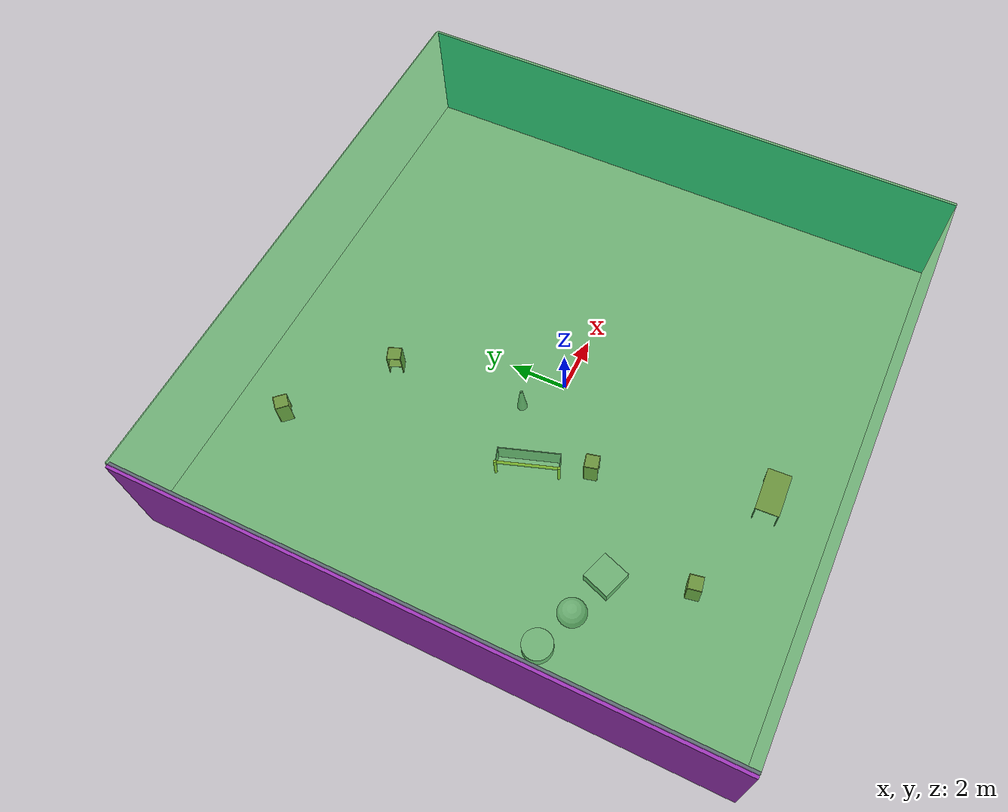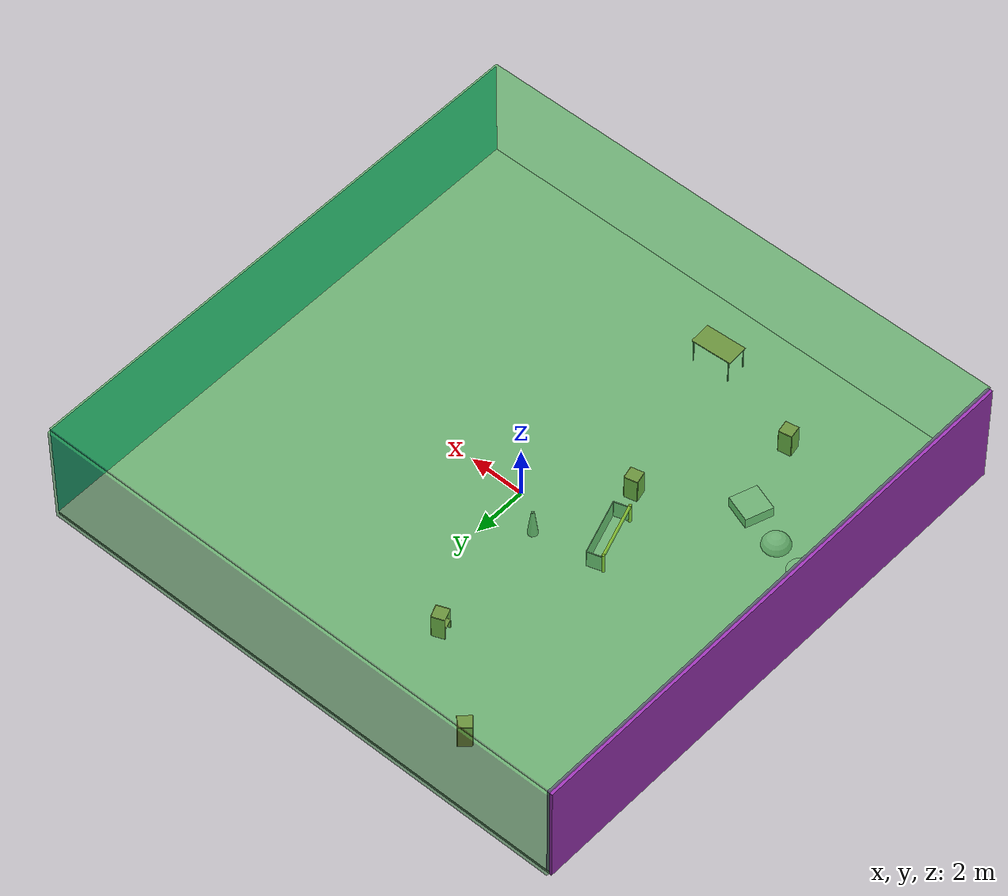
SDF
<sdf version="1.4">
 <world name="default">
  <physics type="ode">
   <max_step_size>0.001</max_step_size>
   <real_time_factor>1</real_time_factor>
   <real_time_update_rate>1000</real_time_update_rate>
   <gravity>0 0 -9.8</gravity>
  </physics>
  <scene><ambient>0.4 0.4 0.4 1</ambient><background>0.7 0.7 0.7 1</background><shadows>1</shadows></scene>
  <model name="Surrounding">
   <static>1</static>
   <link name="Ceiling">
    <collision name="Ceiling_Collision"><geometry><box><size>20 20 0.1</size></box></geometry></collision>
    <visual name="Ceiling_Visual">
     <geometry><box><size>20 20 0.1</size></box></geometry>
     <material>
      <script><uri>file://media/materials/scripts/gazebo.material</uri><name>Gazebo/GreenTransparent</name></script>
     </material>
    </visual>
    <pose>0 0 4.05 0 0 0</pose>
   </link>
   <link name="Wall_South">
    <collision name="Wall_South_Collision">
     <geometry><box><size>20 0 4</size></box></geometry>
     <pose>0 0 2 0 -0 0</pose>
    </collision>
    <visual name="Wall_South_Visual">
     <pose>0 0 2 0 -0 0</pose>
     <geometry><box><size>20 0 4</size></box></geometry>
     <material>
      <script><uri>file://media/materials/scripts/gazebo.material</uri><name>Gazebo/GreyTransparent</name></script>
     </material>
    </visual>
    <velocity_decay><linear>0</linear><angular>0</angular></velocity_decay>
    <pose>0 -10 0 0 -0 0</pose>
   </link>
   <link name="Wall_East">
    <collision name="Wall_21_Collision">
     <geometry><box><size>20 0 4</size></box></geometry>
     <pose>0 0 2 0 -0 0</pose>
    </collision>
    <visual name="Wall_21_Visual">
     <pose>0 0 2 0 -0 0</pose>
     <geometry><box><size>20 0 4</size></box></geometry>
     <material>
      <script>
       <uri>file://media/materials/scripts/gazebo.material</uri>
       <name>Gazebo/TurquoiseGlowOutline</name>
      </script>
     </material>
    </visual>
    <velocity_decay><linear>0</linear><angular>0</angular></velocity_decay>
    <pose>10 0 0 0 -0 1.5708</pose>
   </link>
   <link name="Wall_North">
    <collision name="Wall_22_Collision">
     <geometry><box><size>20 0.2 4</size></box></geometry>
     <pose>0 0 2 0 -0 0</pose>
    </collision>
    <visual name="Wall_22_Visual">
     <pose>0 0 2 0 -0 0</pose>
     <geometry><box><size>20 0.2 4</size></box></geometry>
     <material>
      <script><uri>file://media/materials/scripts/gazebo.material</uri><name>Gazebo/GreenTransparent</name></script>
     </material>
    </visual>
    <velocity_decay><linear>0</linear><angular>0</angular></velocity_decay>
    <pose>0 10 0 0 -0 0</pose>
   </link>
   <link name="Wall_West">
    <collision name="Wall_23_Collision">
     <geometry><box><size>20 0.2 4</size></box></geometry>
     <pose>0 0 2 0 -0 0</pose>
    </collision>
    <visual name="Wall_23_Visual">
     <pose>0 0 2 0 -0 0</pose>
     <geometry><box><size>20 0.2 4</size></box></geometry>
     <material>
      <script><uri>file://media/materials/scripts/gazebo.material</uri><name>Gazebo/PurpleGlow</name></script>
     </material>
    </visual>
    <velocity_decay><linear>0</linear><angular>0</angular></velocity_decay>
    <pose>-10 0 0 0 0 -1.5708</pose>
   </link>
   <link name="Ground_link">
    <collision name="collision">
     <pose>0 0 .05 0 -0 0</pose>
     <geometry><box><size>20 20 0.1</size></box></geometry>
    </collision>
    <visual name="visual">
     <pose>0 0 .05 0 -0 0</pose>
     <geometry><box><size>20 20 0.1</size></box></geometry>
     <material>
      <script><uri>file://media/materials/scripts/gazebo.material</uri><name>Gazebo/JointAnchor</name></script>
     </material>
    </visual>
   </link>
   <static>1</static>
  </model>
  <spherical_coordinates>
   <surface_model>EARTH_WGS84</surface_model>
   <latitude_deg>0</latitude_deg>
   <longitude_deg>0</longitude_deg>
   <elevation>0</elevation>
   <heading_deg>0</heading_deg>
  </spherical_coordinates>
  <light name="lightball_0" type="diffuse">
   <diffuse>0.8 0.8 0.8 1</diffuse>
   <specular>0.2 0.2 0.2 1</specular>
   <attenuation>
    <range>100</range>
    <constant>0.7</constant>
    <linear>0.01</linear>
    <quadratic>0.001</quadratic>
   </attenuation>
   <direction>-0.5 0.1 -0.9</direction>
   <pose>8.79914945482 -7.67565546368 2.50093217601 0 0 0</pose>
  </light>
  <light name="lightball_1" type="diffuse">
   <diffuse>0.8 0.8 0.8 1</diffuse>
   <specular>0.2 0.2 0.2 1</specular>
   <attenuation>
    <range>100</range>
    <constant>0.7</constant>
    <linear>0.01</linear>
    <quadratic>0.001</quadratic>
   </attenuation>
   <direction>-0.5 0.1 -0.9</direction>
   <pose>-7.39326178614 -4.67627227361 0.584132606721 0 0 0</pose>
  </light>
  <light name="lightball_2" type="diffuse">
   <diffuse>0.8 0.8 0.8 1</diffuse>
   <specular>0.2 0.2 0.2 1</specular>
   <attenuation>
    <range>100</range>
    <constant>0.7</constant>
    <linear>0.01</linear>
    <quadratic>0.001</quadratic>
   </attenuation>
   <direction>-0.5 0.1 -0.9</direction>
   <pose>9.46896873809 3.05173779537 2.83737077806 0 0 0</pose>
  </light>
  <light name="lightball_3" type="diffuse">
   <diffuse>0.8 0.8 0.8 1</diffuse>
   <specular>0.2 0.2 0.2 1</specular>
   <attenuation>
    <range>100</range>
    <constant>0.7</constant>
    <linear>0.01</linear>
    <quadratic>0.001</quadratic>
   </attenuation>
   <direction>-0.5 0.1 -0.9</direction>
   <pose>-5.4772504658 -5.71434132619 2.65972587997 0 0 0</pose>
  </light>
  <light name="lightball_4" type="diffuse">
   <diffuse>0.8 0.8 0.8 1</diffuse>
   <specular>0.2 0.2 0.2 1</specular>
   <attenuation>
    <range>100</range>
    <constant>0.7</constant>
    <linear>0.01</linear>
    <quadratic>0.001</quadratic>
   </attenuation>
   <direction>-0.5 0.1 -0.9</direction>
   <pose>-5.66669742626 -3.11590250258 3.75171025832 0 0 0</pose>
  </light>
  <light name="lightball_5" type="diffuse">
   <diffuse>0.8 0.8 0.8 1</diffuse>
   <specular>0.2 0.2 0.2 1</specular>
   <attenuation>
    <range>100</range>
    <constant>0.7</constant>
    <linear>0.01</linear>
    <quadratic>0.001</quadratic>
   </attenuation>
   <direction>-0.5 0.1 -0.9</direction>
   <pose>0.0419030068231 -1.06769390658 3.59828311904 0 0 0</pose>
  </light>
  <light name="lightball_6" type="diffuse">
   <diffuse>0.8 0.8 0.8 1</diffuse>
   <specular>0.2 0.2 0.2 1</specular>
   <attenuation>
    <range>100</range>
    <constant>0.7</constant>
    <linear>0.01</linear>
    <quadratic>0.001</quadratic>
   </attenuation>
   <direction>-0.5 0.1 -0.9</direction>
   <pose>-2.36769559272 5.09131203187 1.98822819512 0 0 0</pose>
  </light>
  <light name="lightball_7" type="diffuse">
   <diffuse>0.8 0.8 0.8 1</diffuse>
   <specular>0.2 0.2 0.2 1</specular>
   <attenuation>
    <range>100</range>
    <constant>0.7</constant>
    <linear>0.01</linear>
    <quadratic>0.001</quadratic>
   </attenuation>
   <direction>-0.5 0.1 -0.9</direction>
   <pose>9.98281331864 3.41240981 3.64990336904 0 0 0</pose>
  </light>
  <light name="lightball_8" type="diffuse">
   <diffuse>0.8 0.8 0.8 1</diffuse>
   <specular>0.2 0.2 0.2 1</specular>
   <attenuation>
    <range>100</range>
    <constant>0.7</constant>
    <linear>0.01</linear>
    <quadratic>0.001</quadratic>
   </attenuation>
   <direction>-0.5 0.1 -0.9</direction>
   <pose>2.0230870473 9.37006693021 0.60314225262 0 0 0</pose>
  </light>
  <light name="lightball_9" type="diffuse">
   <diffuse>0.8 0.8 0.8 1</diffuse>
   <specular>0.2 0.2 0.2 1</specular>
   <attenuation>
    <range>100</range>
    <constant>0.7</constant>
    <linear>0.01</linear>
    <quadratic>0.001</quadratic>
   </attenuation>
   <direction>-0.5 0.1 -0.9</direction>
   <pose>-1.8834991283 -7.72532289932 1.49648171514 0 0 0</pose>
  </light>
  <light name="lightball_10" type="diffuse">
   <diffuse>0.8 0.8 0.8 1</diffuse>
   <specular>0.2 0.2 0.2 1</specular>
   <attenuation>
    <range>100</range>
    <constant>0.7</constant>
    <linear>0.01</linear>
    <quadratic>0.001</quadratic>
   </attenuation>
   <direction>-0.5 0.1 -0.9</direction>
   <pose>-4.52360206481 6.38518677889 1.2553359709 0 0 0</pose>
  </light>
  <include>
   <uri>model://textured_shapes</uri>
   <pose>-7.14901885221 -3.59141199269 0 0 0 1.23573922169</pose>
  </include>
  <include><uri>model://cabinet</uri><pose>-4.98365870692 -6.72113125071 0 0 0 1.75198259589</pose></include>
  <include>
   <uri>model://robocup_3Dsim_goal</uri>
   <pose>-3.57779056269 -0.315949843291 0 0 0 0.319583543463</pose>
  </include>
  <include><uri>model://cabinet</uri><pose>-5.02360997114 8.12813865278 0 0 0 2.33404379456</pose></include>
  <include><uri>model://table</uri><pose>-1.16666403319 -7.88084749163 0 0 0 0.0485070447823</pose></include>
  <include><uri>model://cabinet</uri><pose>-2.6266295912 -2.21052586677 0 0 0 1.8055193605</pose></include>
  <include>
   <uri>model://construction_cone</uri>
   <pose>-1.32949738633 0.98161110653 0 0 0 1.00925757111</pose>
  </include>
  <include><uri>model://cabinet</uri><pose>-1.79034979335 5.63018443111 0 0 0 0.383793904046</pose></include>
 </world>
</sdf>

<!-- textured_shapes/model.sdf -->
<sdf version="1.6">
  <model name="textured_shapes">
    <pose>0 0 0.5 0 0 0</pose>
    <link name="box">
      <pose>0 -1.5 0 0 0 0</pose>
      <collision name="collision">
        <geometry>
          <box>
            <size>1 1 1</size>
          </box>
        </geometry>
      </collision>
      <visual name="visual">
        <geometry>
          <box>
            <size>1 1 1</size>
          </box>
        </geometry>
        <material>
          <script>
            <uri>model://../model_source/models/textured_shapes/materials/scripts</uri>
            <uri>model://../model_source/models/textured_shapes/materials/textures</uri>
            <name>TexturedShape/Squares</name>
          </script>
        </material>
      </visual>
    </link>
    <link name="sphere">
      <collision name="collision">
        <geometry>
          <sphere>
            <radius>0.5</radius>
          </sphere>
        </geometry>
      </collision>
      <visual name="visual">
        <geometry>
          <sphere>
            <radius>0.5</radius>
          </sphere>
        </geometry>
        <material>
          <script>
            <uri>model://../model_source/models/textured_shapes/materials/scripts</uri>
            <uri>model://../model_source/models/textured_shapes/materials/textures</uri>
            <name>TexturedShape/Squares</name>
          </script>
        </material>
      </visual>
    </link>
    <link name="cylinder">
      <pose>0 1.5 0 0 0 0</pose>
      <collision name="collision">
        <geometry>
          <cylinder>
            <radius>0.5</radius>
            <length>1</length>
          </cylinder>
        </geometry>
      </collision>
      <visual name="visual">
        <geometry>
          <cylinder>
            <radius>0.5</radius>
            <length>1</length>
          </cylinder>
        </geometry>
        <material>
          <script>
            <uri>model://../model_source/models/textured_shapes/materials/scripts</uri>
            <uri>model://../model_source/models/textured_shapes/materials/textures</uri>
            <name>TexturedShape/Squares</name>
          </script>
        </material>
      </visual>
    </link>
  </model>
</sdf>

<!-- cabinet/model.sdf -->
<sdf version="1.5">
  <model name="cabinet">
    <static>true</static>
    <link name="cabinet_bottom_plate">
      <inertial>
        <pose>0 0 -1 0 0 0</pose>
        <inertia>
          <ixx>2.050000</ixx>
          <ixy>0</ixy>
          <ixz>0</ixz>
          <iyy>2.050000</iyy>
          <iyz>0</iyz>
          <izz>2.050000</izz>
        </inertia>
        <mass>25.000000</mass>
      </inertial>
      <collision name="cabinet_bottom_plate_geom">
        <pose>0 0 0.010000 0 0 0</pose>
        <geometry>
          <box>
            <size>0.450000 0.450000 0.020000</size>
          </box>
        </geometry>
      </collision>
      <visual name="cabinet_bottom_plate_geom_visual">
        <pose>0 0 0.010000 0 0 0</pose>
        <geometry>
          <box>
            <size>0.450000 0.450000 0.020000</size>
          </box>
        </geometry>
        <material>
          <script>
            <uri>model://media/materials/scripts/gazebo.material</uri>
            <name>Gazebo/Wood</name>
          </script>
        </material>
      </visual>
      <collision name="cabinet_bottom_plate_geom_cabinet_back_plate">
        <pose>0.235000 0 0.510000 0 0 0</pose>
        <geometry>
          <box>
            <size>0.020000 0.450000 1.020000</size>
          </box>
        </geometry>
      </collision>
      <visual name="cabinet_bottom_plate_geom_cabinet_back_plate_visual">
        <pose>0.235000 0 0.510000 0 0 0</pose>
        <geometry>
          <box>
            <size>0.020000 0.450000 1.020000</size>
          </box>
        </geometry>
        <material>
          <script>
            <uri>model://media/materials/scripts/gazebo.material</uri>
            <name>Gazebo/Wood</name>
          </script>
        </material>
      </visual>
      <collision name="cabinet_bottom_plate_geom_cabinet_left_plate">
        <pose>0 0.235000 0.510000 0 0 0</pose>
        <geometry>
          <box>
            <size>0.450000 0.020000 1.020000</size>
          </box>
        </geometry>
      </collision>
      <visual name="cabinet_bottom_plate_geom_cabinet_left_plate_visual">
        <pose>0 0.235000 0.510000 0 0 0</pose>
        <geometry>
          <box>
            <size>0.450000 0.020000 1.020000</size>
          </box>
        </geometry>
        <material>
          <script>
            <uri>model://media/materials/scripts/gazebo.material</uri>
            <name>Gazebo/Wood</name>
          </script>
        </material>
      </visual>
      <collision name="cabinet_bottom_plate_geom_cabinet_middle_plate">
        <pose>0 0 0.510000 0 0 0</pose>
        <geometry>
          <box>
            <size>0.450000 0.450000 0.020000</size>
          </box>
        </geometry>
      </collision>
      <visual name="cabinet_bottom_plate_geom_cabinet_middle_plate_visual">
        <pose>0 0 0.510000 0 0 0</pose>
        <geometry>
          <box>
            <size>0.450000 0.450000 0.020000</size>
          </box>
        </geometry>
        <material>
          <script>
            <uri>model://media/materials/scripts/gazebo.material</uri>
            <name>Gazebo/Wood</name>
          </script>
        </material>
      </visual>
      <collision name="cabinet_bottom_plate_geom_cabinet_right_plate">
        <pose>0 -0.235000 0.510000 0 0 0</pose>
        <geometry>
          <box>
            <size>0.450000 0.020000 1.020000</size>
          </box>
        </geometry>
      </collision>
      <visual name="cabinet_bottom_plate_geom_cabinet_right_plate_visual">
        <pose>0 -0.235000 0.510000 0 0 0</pose>
        <geometry>
          <box>
            <size>0.450000 0.020000 1.020000</size>
          </box>
        </geometry>
        <material>
          <script>
            <uri>model://media/materials/scripts/gazebo.material</uri>
            <name>Gazebo/Wood</name>
          </script>
        </material>
      </visual>
      <collision name="cabinet_bottom_plate_geom_cabinet_top_plate">
        <pose>0 0 1.010000 0 0 0</pose>
        <geometry>
          <box>
            <size>0.450000 0.450000 0.020000</size>
          </box>
        </geometry>
      </collision>
      <visual name="cabinet_bottom_plate_geom_cabinet_top_plate_visual">
        <pose>0 0 1.010000 0 0 0</pose>
        <geometry>
          <box>
            <size>0.450000 0.450000 0.020000</size>
          </box>
        </geometry>
        <material>
          <script>
            <uri>model://media/materials/scripts/gazebo.material</uri>
            <name>Gazebo/Wood</name>
          </script>
        </material>
      </visual>
    </link>
  </model>
</sdf>

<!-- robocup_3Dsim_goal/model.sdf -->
<sdf version="1.5">
  <model name="robocup_3d_goal">
    <static>true</static>
    <link name="left_post">
      <pose>0 1.05 0.45 0 0 0</pose>
      <collision name="collision">
        <geometry>
          <cylinder>
            <radius>0.05</radius>
            <length>0.9</length>
          </cylinder>
        </geometry>
      </collision>
      <visual name="visual">
        <geometry>
          <cylinder>
            <radius>0.05</radius>
            <length>0.9</length>
          </cylinder>
        </geometry>
        <material>
          <script>
            <uri>file://media/materials/scripts/gazebo.material</uri>
            <name>Gazebo/ZincYellow</name>
          </script>
        </material>
      </visual>
    </link>
    <link name="left_support_horiz_lower">
      <pose>0.30 1.05 0.01 0 0 0</pose>
      <collision name="collision">
        <geometry>
          <box>
            <size>0.50 0.02 0.02</size>
          </box>
        </geometry>
      </collision>
      <visual name="visual">
        <geometry>
          <box>
            <size>0.50 0.02 0.02</size>
          </box>
        </geometry>
        <material>
          <script>
            <uri>file://media/materials/scripts/gazebo.material</uri>
            <name>Gazebo/White</name>
          </script>
        </material>
      </visual>
    </link>
    <link name="left_support_horiz_upper">
      <pose>0.30 1.05 0.79 0 0 0</pose>
      <collision name="collision">
        <geometry>
          <box>
            <size>0.50 0.02 0.02</size>
          </box>
        </geometry>
      </collision>
      <visual name="visual">
        <geometry>
          <box>
            <size>0.50 0.02 0.02</size>
          </box>
        </geometry>
        <material>
          <script>
            <uri>file://media/materials/scripts/gazebo.material</uri>
            <name>Gazebo/White</name>
          </script>
        </material>
      </visual>
    </link>
    <link name="left_support_vertical">
      <pose>0.56 1.05 0.4 0 1.5708 0</pose>
      <collision name="collision">
        <geometry>
          <box>
            <size>0.80 0.02 0.02</size>
          </box>
        </geometry>
      </collision>
      <visual name="visual">
        <geometry>
          <box>
            <size>0.80 0.02 0.02</size>
          </box>
        </geometry>
        <material>
          <script>
            <uri>file://media/materials/scripts/gazebo.material</uri>
            <name>Gazebo/White</name>
          </script>
        </material>
      </visual>
    </link>
    <link name="right_support_horiz_lower">
      <pose>0.30 -1.05 0.01 0 0 0</pose>
      <collision name="collision">
        <geometry>
          <box>
            <size>0.50 0.02 0.02</size>
          </box>
        </geometry>
      </collision>
      <visual name="visual">
        <geometry>
          <box>
            <size>0.50 0.02 0.02</size>
          </box>
        </geometry>
        <material>
          <script>
            <uri>file://media/materials/scripts/gazebo.material</uri>
            <name>Gazebo/White</name>
          </script>
        </material>
      </visual>
    </link>
    <link name="right_support_horiz_upper">
      <pose>0.30 -1.05 0.79 0 0 0</pose>
      <collision name="collision">
        <geometry>
          <box>
            <size>0.50 0.02 0.02</size>
          </box>
        </geometry>
      </collision>
      <visual name="visual">
        <geometry>
          <box>
            <size>0.50 0.02 0.02</size>
          </box>
        </geometry>
        <material>
          <script>
            <uri>file://media/materials/scripts/gazebo.material</uri>
            <name>Gazebo/White</name>
          </script>
        </material>
      </visual>
    </link>
    <link name="right_support_vertical">
      <pose>0.56 -1.05 0.4 0 1.5708 0</pose>
      <collision name="collision">
        <geometry>
          <box>
            <size>0.80 0.02 0.02</size>
          </box>
        </geometry>
      </collision>
      <visual name="visual">
        <geometry>
          <box>
            <size>0.80 0.02 0.02</size>
          </box>
        </geometry>
        <material>
          <script>
            <uri>file://media/materials/scripts/gazebo.material</uri>
            <name>Gazebo/White</name>
          </script>
        </material>
      </visual>
    </link>
    <link name="center_support_horiz_lower">
      <pose>0.56 0 0.01 0 1.5708 0</pose>
      <collision name="collision">
        <geometry>
          <box>
            <size>0.02 2.08 0.02</size>
          </box>
        </geometry>
      </collision>
      <visual name="visual">
        <geometry>
          <box>
            <size>0.02 2.08 0.02</size>
          </box>
        </geometry>
        <material>
          <script>
            <uri>file://media/materials/scripts/gazebo.material</uri>
            <name>Gazebo/White</name>
          </script>
        </material>
      </visual>
    </link>
    <link name="center_support_horiz_upper">
      <pose>0.56 0 0.79 0 1.5708 0</pose>
      <collision name="collision">
        <geometry>
          <box>
            <size>0.02 2.08 0.02</size>
          </box>
        </geometry>
      </collision>
      <visual name="visual">
        <geometry>
          <box>
            <size>0.02 2.08 0.02</size>
          </box>
        </geometry>
        <material>
          <script>
            <uri>file://media/materials/scripts/gazebo.material</uri>
            <name>Gazebo/White</name>
          </script>
        </material>
      </visual>
    </link>
    <link name="right_post">
      <pose>0 -1.05 0.45 0 0 0</pose>
      <collision name="collision">
        <geometry>
          <cylinder>
            <radius>0.05</radius>
            <length>0.9</length>
          </cylinder>
        </geometry>
      </collision>
      <visual name="visual">
        <geometry>
          <cylinder>
            <radius>0.05</radius>
            <length>0.9</length>
          </cylinder>
        </geometry>
        <material>
          <script>
            <uri>file://media/materials/scripts/gazebo.material</uri>
            <name>Gazebo/ZincYellow</name>
          </script>
        </material>
      </visual>
    </link>
    <link name="crossbar">
      <pose>0 0 0.85 1.57 1.57 0</pose>
      <collision name="collision">
        <geometry>
          <cylinder>
            <radius>0.05</radius>
            <length>2.0</length>
          </cylinder>
        </geometry>
      </collision>
      <visual name="visual">
        <geometry>
          <cylinder>
            <radius>0.05</radius>
            <length>2.0</length>
          </cylinder>
        </geometry>
        <material>
          <script>
            <uri>file://media/materials/scripts/gazebo.material</uri>
            <name>Gazebo/ZincYellow</name>
          </script>
        </material>
      </visual>
    </link>
    <link name="center_net">
      <pose>0.56 0 0.40 0 0 0</pose>
      <collision name="collision">
        <geometry>
          <box>
            <size>0.01 2.1 0.80</size>
          </box>
        </geometry>
      </collision>
      <visual name="visual">
        <geometry>
          <box>
            <size>0.01 2.1 0.80</size>
          </box>
        </geometry>
        <material>
          <script>
            <uri>model://../model_source/models/robocup09_spl_field/materials/scripts/</uri>
            <uri>model://../model_source/models/robocup09_spl_field/materials/textures/</uri>
            <name>RoboCup/Net</name>
          </script>
        </material>
      </visual>
    </link>
    <link name="left_net">
      <pose>0.30 1.05 0.40 0 0 0</pose>
      <collision name="collision">
        <geometry>
          <box>
            <size>0.50 0.01 0.76</size>
          </box>
        </geometry>
      </collision>
      <visual name="visual">
        <geometry>
          <box>
            <size>0.50 0.01 0.76</size>
          </box>
        </geometry>
        <material>
          <script>
            <uri>model://../model_source/models/robocup09_spl_field/materials/scripts/</uri>
            <uri>model://../model_source/models/robocup09_spl_field/materials/textures/</uri>
            <name>RoboCup/Net</name>
          </script>
        </material>
      </visual>
    </link>
    <link name="right_net">
      <pose>0.30 -1.05 0.40 0 0 0</pose>
      <collision name="collision">
        <geometry>
          <box>
            <size>0.50 0.01 0.76</size>
          </box>
        </geometry>
      </collision>
      <visual name="visual">
        <geometry>
          <box>
            <size>0.50 0.01 0.76</size>
          </box>
        </geometry>
        <material>
          <script>
            <uri>model://../model_source/models/robocup09_spl_field/materials/scripts/</uri>
            <uri>model://../model_source/models/robocup09_spl_field/materials/textures/</uri>
            <name>RoboCup/Net</name>
          </script>
        </material>
      </visual>
    </link>
  </model>
</sdf>

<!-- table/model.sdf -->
<sdf version="1.5">
  <model name="table">
    <static>true</static>
    <link name="link">
      <collision name="surface">
        <pose>0 0 1.0 0 0 0</pose>
        <geometry>
          <box>
            <size>1.5 0.8 0.03</size>
          </box>
        </geometry>
        <surface>
          <friction>
            <ode>
              <mu>0.6</mu>
              <mu2>0.6</mu2>
            </ode>
          </friction>
        </surface>
      </collision>
      <visual name="visual1">
        <pose>0 0 1.0 0 0 0</pose>
        <geometry>
          <box>
            <size>1.5 0.8 0.03</size>
          </box>
        </geometry>
        <material>
          <script>
            <uri>model://media/materials/scripts/gazebo.material</uri>
            <name>Gazebo/Wood</name>
          </script>
        </material>
      </visual>
      <collision name="front_left_leg">
        <pose>0.68 0.38 0.5 0 0 0</pose>
        <geometry>
          <cylinder>
            <radius>0.02</radius>
            <length>1.0</length>
          </cylinder>
        </geometry>
      </collision>
      <visual name="front_left_leg">
        <pose>0.68 0.38 0.5 0 0 0</pose>
        <geometry>
          <cylinder>
            <radius>0.02</radius>
            <length>1.0</length>
          </cylinder>
        </geometry>
        <material>
          <script>
            <uri>model://media/materials/scripts/gazebo.material</uri>
            <name>Gazebo/Grey</name>
          </script>
        </material>
      </visual>
      <collision name="front_right_leg">
        <pose>0.68 -0.38 0.5 0 0 0</pose>
        <geometry>
          <cylinder>
            <radius>0.02</radius>
            <length>1.0</length>
          </cylinder>
        </geometry>
      </collision>
      <visual name="front_right_leg">
        <pose>0.68 -0.38 0.5 0 0 0</pose>
        <geometry>
          <cylinder>
            <radius>0.02</radius>
            <length>1.0</length>
          </cylinder>
        </geometry>
        <material>
          <script>
            <uri>model://media/materials/scripts/gazebo.material</uri>
            <name>Gazebo/Grey</name>
          </script>
        </material>
      </visual>
      <collision name="back_right_leg">
        <pose>-0.68 -0.38 0.5 0 0 0</pose>
        <geometry>
          <cylinder>
            <radius>0.02</radius>
            <length>1.0</length>
          </cylinder>
        </geometry>
      </collision>
      <visual name="back_right_leg">
        <pose>-0.68 -0.38 0.5 0 0 0</pose>
        <geometry>
          <cylinder>
            <radius>0.02</radius>
            <length>1.0</length>
          </cylinder>
        </geometry>
        <material>
          <script>
            <uri>model://media/materials/scripts/gazebo.material</uri>
            <name>Gazebo/Grey</name>
          </script>
        </material>
      </visual>
      <collision name="back_left_leg">
        <pose>-0.68 0.38 0.5 0 0 0</pose>
        <geometry>
          <cylinder>
            <radius>0.02</radius>
            <length>1.0</length>
          </cylinder>
        </geometry>
      </collision>
      <visual name="back_left_leg">
        <pose>-0.68 0.38 0.5 0 0 0</pose>
        <geometry>
          <cylinder>
            <radius>0.02</radius>
            <length>1.0</length>
          </cylinder>
        </geometry>
        <material>
          <script>
            <uri>model://media/materials/scripts/gazebo.material</uri>
            <name>Gazebo/Grey</name>
          </script>
        </material>
      </visual>
    </link>
  </model>
</sdf>

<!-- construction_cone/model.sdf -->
<sdf version="1.5">
  <model name="Construction Cone">
    <link name="link">
      <collision name="collision">
        <geometry>
          <mesh>
            <scale>10 10 10</scale>
            <uri>file://isr-testbed/construction_cone/meshes/construction_cone.dae</uri>
          </mesh>
        </geometry>
      </collision>
      <visual name="visual">
        <geometry>
          <mesh>
            <scale>10 10 10</scale>
            <uri>file://isr-testbed/construction_cone/meshes/construction_cone.dae</uri>
          </mesh>
        </geometry>
      </visual>
    </link>
  </model>
</sdf>
